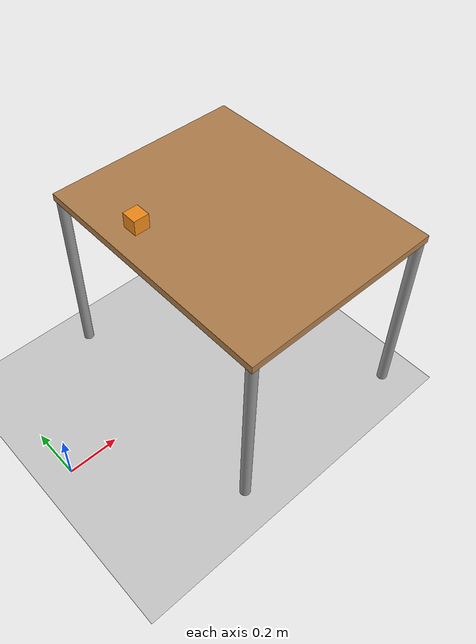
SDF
<?xml version="1.0" ?>
<sdf version="1.4">
  <world name="default">
    <light name='sun' type='directional'>
      <cast_shadows>1</cast_shadows>
      <pose>0 0 10 0 -0 0</pose>
      <diffuse>0.8 0.8 0.8 1</diffuse>
      <specular>0.2 0.2 0.2 1</specular>
      <attenuation>
        <range>1000</range>
        <constant>0.9</constant>
        <linear>0.01</linear>
        <quadratic>0.001</quadratic>
      </attenuation>
      <direction>-0.5 0.1 -0.9</direction>
    </light>
    <!-- A ground plane -->
    <include>
      <uri>model://ground_plane</uri>
    </include>
    <!-- A table -->
    <include>
      <uri>model://table_30</uri>
      <name>table1</name>
      <pose>0.8 0 0 0 0 1.57</pose>
    </include>
    <!-- A cube -->
    <include>
      <uri>model://ubr_cube</uri>
      <pose>0.50 0.15 0.83 0 0 0</pose>
    </include>
  </world>
</sdf>

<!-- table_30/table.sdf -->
<sdf version='1.3'>
<model name='table'>
      <static>1</static>
      <link name='link'>
        <collision name='surface'>
          <pose>0.000000 0.000000 0.76200 0.000000 0.000000 0.000000</pose>
          <geometry>
            <box>
              <size>1.000000 0.800000 0.030000</size>
            </box>
          </geometry>
          <surface>
            <bounce/>
            <friction>
              <ode/>
            </friction>
            <contact>
              <ode/>
            </contact>
          </surface>
        </collision>
        <visual name='visual1'>
          <pose>0.000000 0.000000 0.762000 0.000000 0.000000 0.000000</pose>
          <geometry>
            <box>
              <size>1.000000 0.800000 0.030000</size>
            </box>
          </geometry>
          <material>
            <script>
              <uri>file://media/materials/scripts/gazebo.material</uri>
              <name>Gazebo/Wood</name>
            </script>
          </material>
        </visual>
        <collision name='front_left_leg'>
          <pose>0.480000 0.380000 0.381000 0.000000 0.000000 0.000000</pose>
          <geometry>
            <cylinder>
              <radius>0.020000</radius>
              <length>0.762000</length>
            </cylinder>
          </geometry>
          <surface>
            <bounce/>
            <friction>
              <ode/>
            </friction>
            <contact>
              <ode/>
            </contact>
          </surface>
        </collision>
        <visual name='front_left_leg'>
          <pose>0.480000 0.380000 0.381000 0.000000 0.000000 0.000000</pose>
          <geometry>
            <cylinder>
              <radius>0.020000</radius>
              <length>0.762000</length>
            </cylinder>
          </geometry>
          <material>
            <script>
              <uri>file://media/materials/scripts/gazebo.material</uri>
              <name>Gazebo/Grey</name>
            </script>
          </material>
        </visual>
        <collision name='front_right_leg'>
          <pose>0.480000 -0.380000 0.381000 0.000000 0.000000 0.000000</pose>
          <geometry>
            <cylinder>
              <radius>0.020000</radius>
              <length>0.762000</length>
            </cylinder>
          </geometry>
          <surface>
            <bounce/>
            <friction>
              <ode/>
            </friction>
            <contact>
              <ode/>
            </contact>
          </surface>
        </collision>
        <visual name='front_right_leg'>
          <pose>0.480000 -0.380000 0.381000 0.000000 0.000000 0.000000</pose>
          <geometry>
            <cylinder>
              <radius>0.020000</radius>
              <length>0.762000</length>
            </cylinder>
          </geometry>
          <material>
            <script>
              <uri>file://media/materials/scripts/gazebo.material</uri>
              <name>Gazebo/Grey</name>
            </script>
          </material>
        </visual>
        <collision name='back_right_leg'>
          <pose>-0.480000 -0.380000 0.381000 0.000000 0.000000 0.000000</pose>
          <geometry>
            <cylinder>
              <radius>0.020000</radius>
              <length>0.762000</length>
            </cylinder>
          </geometry>
          <surface>
            <bounce/>
            <friction>
              <ode/>
            </friction>
            <contact>
              <ode/>
            </contact>
          </surface>
        </collision>
        <visual name='back_right_leg'>
          <pose>-0.480000 -0.380000 0.381000 0.000000 0.000000 0.000000</pose>
          <geometry>
            <cylinder>
              <radius>0.020000</radius>
              <length>0.762000</length>
            </cylinder>
          </geometry>
          <material>
            <script>
              <uri>file://media/materials/scripts/gazebo.material</uri>
              <name>Gazebo/Grey</name>
            </script>
          </material>
        </visual>
        <collision name='back_left_leg'>
          <pose>-0.480000 0.380000 0.381000 0.000000 0.000000 0.000000</pose>
          <geometry>
            <cylinder>
              <radius>0.020000</radius>
              <length>0.762000</length>
            </cylinder>
          </geometry>
          <surface>
            <bounce/>
            <friction>
              <ode/>
            </friction>
            <contact>
              <ode/>
            </contact>
          </surface>
        </collision>
        <visual name='back_left_leg'>
          <pose>-0.480000 0.380000 0.381000 0.000000 0.000000 0.000000</pose>
          <geometry>
            <cylinder>
              <radius>0.020000</radius>
              <length>0.762000</length>
            </cylinder>
          </geometry>
          <material>
            <script>
              <uri>file://media/materials/scripts/gazebo.material</uri>
              <name>Gazebo/Grey</name>
            </script>
          </material>
        </visual>
        <velocity_decay>
          <linear>0.000000</linear>
          <angular>0.000000</angular>
        </velocity_decay>
        <self_collide>0</self_collide>
        <kinematic>0</kinematic>
        <gravity>1</gravity>
      </link>
    </model>
</sdf>

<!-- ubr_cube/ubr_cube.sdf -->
<sdf version='1.4'>
  <model name="ubr_cube">
      <static>0</static>
      <link name='link'>
        <inertial>
          <mass>0.25</mass>
          <inertia>
            <ixx>0.001</ixx>
            <ixy>0.000000</ixy>
            <ixz>0.000000</ixz>
            <iyy>0.001</iyy>
            <iyz>0.000000</iyz>
            <izz>0.001</izz>
          </inertia>
        </inertial>
        <collision name='collision'>
          <geometry>
            <box>
              <size>0.060 0.060 0.060</size>
            </box>
          </geometry>
          <surface>
            <friction>
              <ode>
                <mu>30.0</mu>
                <mu2>30.0</mu2>
              </ode>
            </friction>
            <contact>
              <ode>
                <kp>1000000.0</kp>
                <kd>100.0</kd>
                <max_vel>1.0</max_vel>
                <min_depth>0.002</min_depth>
              </ode>
            </contact>
          </surface>
        </collision>
        <visual name='visual'>
          <geometry>
            <box>
              <size>0.060 0.060 0.060</size>
            </box>
          </geometry>
          <material>
            <script>
              <uri>file://media/materials/scripts/gazebo.material</uri>
              <name>Gazebo/Orange</name>
            </script>
          </material>
        </visual>
        <velocity_decay>
          <linear>0.000000</linear>
          <angular>0.000000</angular>
        </velocity_decay>
        <self_collide>0</self_collide>
        <kinematic>0</kinematic>
        <gravity>1</gravity>
      </link>
  </model>
</sdf>
